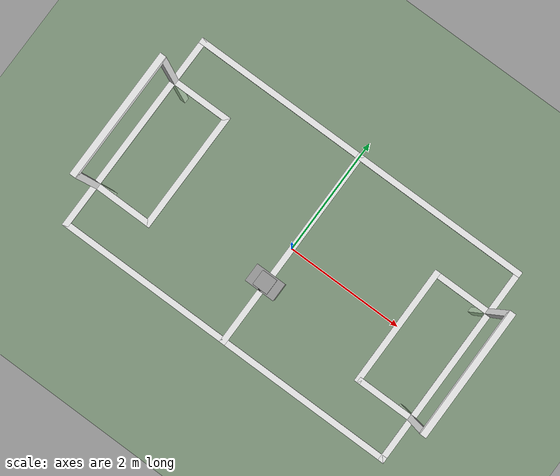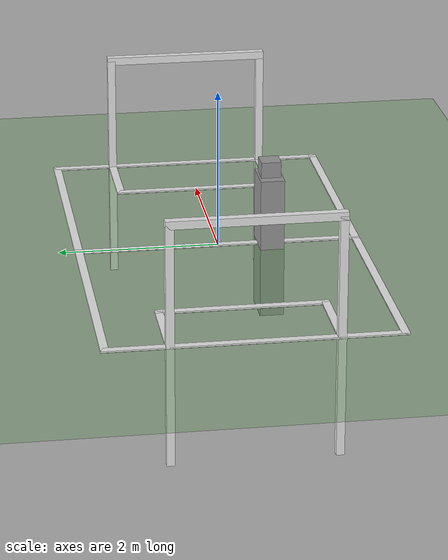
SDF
<sdf version="1.6">
 <world name="default">
  <gravity>0 0 -9.8</gravity>
  <magnetic_field>6e-06 2.3e-05 -4.2e-05</magnetic_field>
  <atmosphere type="adiabatic"/>
  <physics name="default_physics" default="0" type="ode">
   <max_step_size>0.001</max_step_size>
   <real_time_factor>1</real_time_factor>
   <real_time_update_rate>1000</real_time_update_rate>
  </physics>
  <scene><ambient>0.4 0.4 0.4 1</ambient><background>0.7 0.7 0.7 1</background><shadows>1</shadows></scene>
  <spherical_coordinates>
   <surface_model>EARTH_WGS84</surface_model>
   <latitude_deg>0</latitude_deg>
   <longitude_deg>0</longitude_deg>
   <elevation>0</elevation>
   <heading_deg>0</heading_deg>
  </spherical_coordinates>
  <light name="sun" type="directional">
   <pose>-11.8208 -19.3843 17.2198 0 0 0</pose>
   <diffuse>0.7 0.7 0.7 1</diffuse>
   <specular>0.2 0.2 0.2 1</specular>
   <direction>0.3698 0.4 -0.5</direction>
   <attenuation>
    <range>1000</range>
    <constant>0.9</constant>
    <linear>0.01</linear>
    <quadratic>0.001</quadratic>
   </attenuation>
  </light>
  <model name="plane">
   <static>1</static>
   <link name="link">
    <collision name="collision">
     <geometry><plane><normal>0 0 1</normal><size>50 50</size></plane></geometry>
     <material>
      <script><uri>file://media/materials/scripts/gazebo.material</uri><name>Gazebo/Grass</name></script>
     </material>
     <surface><friction><ode><mu>100</mu><mu2>50</mu2></ode></friction></surface>
    </collision>
    <visual name="visual">
     <cast_shadows>0</cast_shadows>
     <geometry><plane><normal>0 0 1</normal><size>18 12</size></plane></geometry>
     <material>
      <script><uri>file://media/materials/scripts/gazebo.material</uri><name>Gazebo/Grass</name></script>
     </material>
    </visual>
    <self_collide>1</self_collide>
   </link>
  </model>
  <model name="pitch_contour">
   <pose>-3 0 0 0 0 0</pose>
   <static>1</static>
   <link name="pitch_contour">
    <inertial>
     <pose>-3 0 0 0 0 0</pose>
     <inertia><ixx>0</ixx><ixy>0</ixy><ixz>0</ixz><iyy>0</iyy><iyz>0</iyz><izz>0</izz></inertia>
     <mass>25</mass>
    </inertial>
    <collision name="right_boundary"><geometry><box><size>0.1 3.6 0.02</size></box></geometry></collision>
    <visual name="right_boundary_visual">
     <geometry><box><size>0.1 3.6 0.02</size></box></geometry>
     <material>
      <script><uri>file://media/materials/scripts/gazebo.material</uri><name>Gazebo/White</name></script>
     </material>
    </visual>
    <collision name="back_boundary">
     <pose>3 1.75 0 0 0 0</pose>
     <geometry><box><size>6.1 0.1 0.02</size></box></geometry>
    </collision>
    <visual name="back_boundary_visual">
     <pose>3 1.75 0 0 0 0</pose>
     <geometry><box><size>6.1 0.1 0.02</size></box></geometry>
     <material>
      <script><uri>file://media/materials/scripts/gazebo.material</uri><name>Gazebo/White</name></script>
     </material>
    </visual>
    <collision name="front_boundary">
     <pose>3 -1.75 0 0 0 0</pose>
     <geometry><box><size>6.1 0.1 0.02</size></box></geometry>
    </collision>
    <visual name="front_boundary_visual">
     <pose>3 -1.75 0 0 0 0</pose>
     <geometry><box><size>6.1 0.1 0.02</size></box></geometry>
     <material>
      <script><uri>file://media/materials/scripts/gazebo.material</uri><name>Gazebo/White</name></script>
     </material>
    </visual>
    <collision name="left_boundary">
     <pose>6 0 0 0 0 0</pose>
     <geometry><box><size>0.1 3.6 0.02</size></box></geometry>
    </collision>
    <visual name="left_boundary_visual">
     <pose>6 0 0 0 0 0</pose>
     <geometry><box><size>0.1 3.6 0.02</size></box></geometry>
     <material>
      <script><uri>file://media/materials/scripts/gazebo.material</uri><name>Gazebo/White</name></script>
     </material>
    </visual>
    <collision name="central_line">
     <pose>3 0 0 0 0 0</pose>
     <geometry><box><size>0.1 3.6 0.02</size></box></geometry>
    </collision>
    <visual name="central_line">
     <pose>3 0 0 0 0 0</pose>
     <geometry><box><size>0.1 3.6 0.02</size></box></geometry>
     <material>
      <script><uri>file://media/materials/scripts/gazebo.material</uri><name>Gazebo/White</name></script>
     </material>
    </visual>
    <collision name="right_area_front">
     <pose>0.5 -1 0 0 0 0</pose>
     <geometry><box><size>1.0 0.1 0.02</size></box></geometry>
    </collision>
    <visual name="right_area_front_visual">
     <pose>0.5 -1 0 0 0 0</pose>
     <geometry><box><size>1.0 0.1 0.02</size></box></geometry>
     <material>
      <script><uri>file://media/materials/scripts/gazebo.material</uri><name>Gazebo/White</name></script>
     </material>
    </visual>
    <collision name="right_area_back">
     <pose>0.5 1 0 0 0 0</pose>
     <geometry><box><size>1.1 0.1 0.02</size></box></geometry>
    </collision>
    <visual name="right_area_back_visual">
     <pose>0.5 1 0 0 0 0</pose>
     <geometry><box><size>1.1 0.1 0.02</size></box></geometry>
     <material>
      <script><uri>file://media/materials/scripts/gazebo.material</uri><name>Gazebo/White</name></script>
     </material>
    </visual>
    <collision name="right_area_left">
     <pose>1 0 0 0 0 0</pose>
     <geometry><box><size>0.1 2.1 0.02</size></box></geometry>
    </collision>
    <visual name="right_area_left_visual">
     <pose>1 0 0 0 0 0</pose>
     <geometry><box><size>0.1 2.1 0.02</size></box></geometry>
     <material>
      <script><uri>file://media/materials/scripts/gazebo.material</uri><name>Gazebo/White</name></script>
     </material>
    </visual>
    <collision name="left_area_front">
     <pose>5.5 -1 0 0 0 0</pose>
     <geometry><box><size>1.0 0.1 0.02</size></box></geometry>
    </collision>
    <visual name="left_area_front_visual">
     <pose>5.5 -1 0 0 0 0</pose>
     <geometry><box><size>1.0 0.1 0.02</size></box></geometry>
     <material>
      <script><uri>file://media/materials/scripts/gazebo.material</uri><name>Gazebo/White</name></script>
     </material>
    </visual>
    <collision name="left_area_back">
     <pose>5.5 1 0 0 0 0</pose>
     <geometry><box><size>1.1 0.1 0.02</size></box></geometry>
    </collision>
    <visual name="left_area_back_visual">
     <pose>5.5 1 0 0 0 0</pose>
     <geometry><box><size>1.1 0.1 0.02</size></box></geometry>
     <material>
      <script><uri>file://media/materials/scripts/gazebo.material</uri><name>Gazebo/White</name></script>
     </material>
    </visual>
    <collision name="left_area_right">
     <pose>5 0 0 0 0 0</pose>
     <geometry><box><size>0.1 2.1 0.02</size></box></geometry>
    </collision>
    <visual name="left_area_right_visual">
     <pose>5 0 0 0 0 0</pose>
     <geometry><box><size>0.1 2.1 0.02</size></box></geometry>
     <material>
      <script><uri>file://media/materials/scripts/gazebo.material</uri><name>Gazebo/White</name></script>
     </material>
    </visual>
   </link>
  </model>
  <model name="goal_right">
   <pose>-3 1 0 0 0 -1.57</pose>
   <static>1</static>
   <link name="goal_right">
    <inertial>
     <pose>-3 1 0 0 0 -1.55</pose>
     <inertia><ixx>0</ixx><ixy>0</ixy><ixz>0</ixz><iyy>0</iyy><iyz>0</iyz><izz>0</izz></inertia>
     <mass>25</mass>
    </inertial>
    <collision name="vertical_right_r"><geometry><box><size>0.1 0.1 3</size></box></geometry></collision>
    <visual name="vertical_right_r_visual">
     <geometry><box><size>0.1 0.1 3</size></box></geometry>
     <material>
      <script><uri>file://media/materials/scripts/gazebo.material</uri><name>Gazebo/White</name></script>
     </material>
    </visual>
    <collision name="vertical_left_r">
     <pose>2 0 0 0 0 0</pose>
     <geometry><box><size>0.1 0.1 3</size></box></geometry>
    </collision>
    <visual name="vertical_left_r_visual">
     <pose>2 0 0 0 0 0</pose>
     <geometry><box><size>0.1 0.1 3</size></box></geometry>
     <material>
      <script><uri>file://media/materials/scripts/gazebo.material</uri><name>Gazebo/White</name></script>
     </material>
    </visual>
    <collision name="horizontal_r">
     <pose>1 0 1.5 0 0 0</pose>
     <geometry><box><size>2.1 0.1 0.1</size></box></geometry>
    </collision>
    <visual name="horizontal_r_visual">
     <pose>1 0 1.5 0 0 0</pose>
     <geometry><box><size>2.1 0.1 0.1</size></box></geometry>
     <material>
      <script><uri>file://media/materials/scripts/gazebo.material</uri><name>Gazebo/White</name></script>
     </material>
    </visual>
   </link>
  </model>
  <model name="goal_left">
   <pose>3 1 0 0 0 -1.57</pose>
   <static>1</static>
   <link name="goal_left">
    <inertial>
     <pose>3 1 0 0 0 -1.55</pose>
     <inertia><ixx>0</ixx><ixy>0</ixy><ixz>0</ixz><iyy>0</iyy><iyz>0</iyz><izz>0</izz></inertia>
     <mass>25</mass>
    </inertial>
    <collision name="vertical_right_l"><geometry><box><size>0.1 0.1 3</size></box></geometry></collision>
    <visual name="vertical_right_l_visual">
     <geometry><box><size>0.1 0.1 3</size></box></geometry>
     <material>
      <script><uri>file://media/materials/scripts/gazebo.material</uri><name>Gazebo/White</name></script>
     </material>
    </visual>
    <collision name="vertical_left_l">
     <pose>2 0 0 0 0 0</pose>
     <geometry><box><size>0.1 0.1 3</size></box></geometry>
    </collision>
    <visual name="vertical_left_l_visual">
     <pose>2 0 0 0 0 0</pose>
     <geometry><box><size>0.1 0.1 3</size></box></geometry>
     <material>
      <script><uri>file://media/materials/scripts/gazebo.material</uri><name>Gazebo/White</name></script>
     </material>
    </visual>
    <collision name="horizontal_l">
     <pose>1 0 1.5 0 0 0</pose>
     <geometry><box><size>2.1 0.1 0.1</size></box></geometry>
    </collision>
    <visual name="horizontal_l_visual">
     <pose>1 0 1.5 0 0 0</pose>
     <geometry><box><size>2.1 0.1 0.1</size></box></geometry>
     <material>
      <script><uri>file://media/materials/scripts/gazebo.material</uri><name>Gazebo/White</name></script>
     </material>
    </visual>
   </link>
  </model>
  <model name="camera">
   <pose>0 -0.65 0 0 0 0</pose>
   <static>1</static>
   <link name="camera">
    <inertial>
     <pose>0 -0.65 0 0 0 0</pose>
     <inertia><ixx>0</ixx><ixy>0</ixy><ixz>0</ixz><iyy>0</iyy><iyz>0</iyz><izz>0</izz></inertia>
     <mass>25</mass>
    </inertial>
    <collision name="camera_box"><geometry><box><size>0.5 0.3 1.8</size></box></geometry></collision>
    <visual name="camera_box_visual">
     <geometry><box><size>0.5 0.3 1.8</size></box></geometry>
     <material>
      <script><uri>file://media/materials/scripts/gazebo.material</uri><name>Gazebo/Grey</name></script>
     </material>
    </visual>
    <collision name="camera_body">
     <pose>0 0 1 0 0 0</pose>
     <geometry><box><size>0.25 0.25 0.2</size></box></geometry>
    </collision>
    <visual name="camera_body_visual">
     <pose>0 0 1 0 0 0</pose>
     <geometry><box><size>0.25 0.25 0.2</size></box></geometry>
     <material>
      <script><uri>file://media/materials/scripts/gazebo.material</uri><name>Gazebo/Grey</name></script>
     </material>
    </visual>
    <collision name="camera_pupil_collision">
     <pose>0 -0.124 1 0 0 0</pose>
     <geometry><sphere><radius>.025</radius></sphere></geometry>
    </collision>
    <visual name="camera_pupil_visual">
     <pose>0 -0.124 1 0 0 0</pose>
     <material>
      <script><uri>file://media/materials/scripts/gazebo.material</uri><name>Gazebo/Black</name></script>
     </material>
     <geometry><sphere><radius>.025</radius></sphere></geometry>
    </visual>
    <sensor name="camera" type="camera">
     <pose>0 -0.124 1 0 0 -1.55</pose>
     <topic>/arm_robot/camera</topic>
     <camera>
      <horizontal_fov>1.</horizontal_fov>
      <image><width>320</width><height>240</height></image>
      <clip><near>0.1</near><far>100</far></clip>
     </camera>
     <always_on>1</always_on>
     <update_rate>30</update_rate>
     <visualize>true</visualize>
     <plugin name="mouse_right_eye" filename="libgazebo_ros_camera.so">
      <alwaysOn>true</alwaysOn>
      <updateRate>30.0</updateRate>
      <cameraName>arm_robot</cameraName>
      <imageTopicName>camera</imageTopicName>
      <cameraInfoTopicName>camera_info</cameraInfoTopicName>
      <frameName>camera_link</frameName>
      <hackBaseline>0.07</hackBaseline>
      <distortionK1>0.0</distortionK1>
      <distortionK2>0.0</distortionK2>
      <distortionK3>0.0</distortionK3>
      <distortionT1>0.0</distortionT1>
      <distortionT2>0.0</distortionT2>
     </plugin>
    </sensor>
   </link>
  </model>
 </world>
</sdf>
